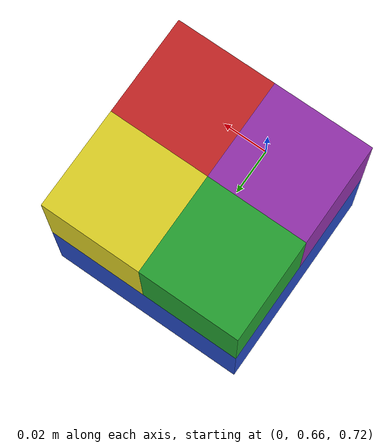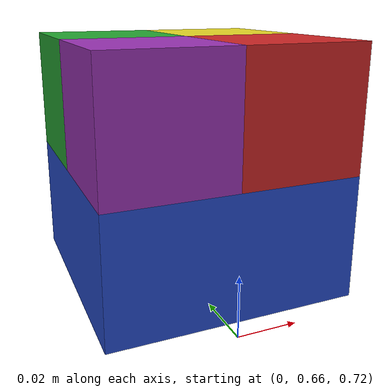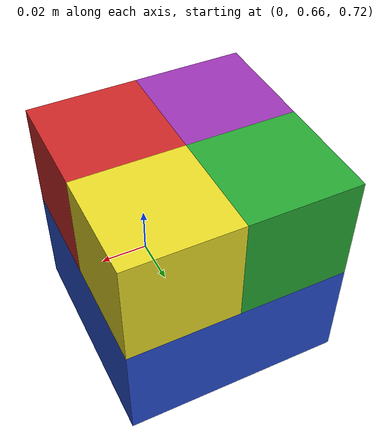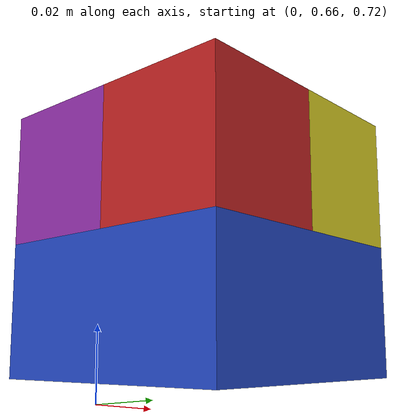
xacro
<?xml version="1.0"?>
<robot xmlns:xacro="http://ros.org/wiki/xacro" name="cube">

  <xacro:macro name="base_block" params="length">
    <link name="cube_link">
      <visual>
        <geometry>
          <box size="${length} ${length} ${length/2}"/>
          <material name="">
            <color rgba="0.9 0.9 0.9 1" />
          </material>
        </geometry>
      </visual>
      <collision>
        <geometry>
          <box size="${length} ${length} ${length/2}"/>
        </geometry>
      </collision>
      <inertial>
        <origin xyz="0 0 0" rpy="0 0 0"/>
        <mass value="0.1"/>
        <inertia
          ixx="1.0" ixy="0.0" ixz="0.0"
          iyy="1.0" iyz="0.0"
          izz="1.0"/>
      </inertial>
    </link>
  </xacro:macro>

  <xacro:macro name="top_cube" params="length suffix">
    <link name="cube_${suffix}">
      <visual>
        <geometry>
          <box size="${length/2} ${length/2} ${length/2}"/>
          <material name="">
            <color rgba="0.9 0.9 0.9 1" />
          </material>
        </geometry>
      </visual>
      <collision>
        <geometry>
          <box size="${length/2} ${length/2} ${length/2}"/>
        </geometry>
      </collision>
      <inertial>
        <origin xyz="0 0 0" rpy="0 0 0"/>
        <mass value="0.1"/>
        <inertia
          ixx="1.0" ixy="0.0" ixz="0.0"
          iyy="1.0" iyz="0.0"
          izz="1.0"/>
      </inertial>
    </link>
  </xacro:macro>

  <xacro:macro name="colour_cube" params="length">
    <xacro:base_block length="${length}" />
    <xacro:top_cube length="${length}" suffix="1"/>
    <xacro:top_cube length="${length}" suffix="2"/>
    <xacro:top_cube length="${length}" suffix="3"/>
    <xacro:top_cube length="${length}" suffix="4"/>
    <link name="world" />

    <joint name="world2cube_joint" type="fixed">
      <parent link="world" />
      <child link = "cube_link" />
      <origin xyz="0.0 0.7 ${0.7125+0.0127+length/4}" rpy="3.1415926 0.0 3.1415926" />
    </joint>

    <joint name="cube_1_2_base" type="fixed">
      <parent link="cube_link" />
      <child link = "cube_1" />
      <origin xyz="${-length/4} ${-length/4} ${-length/2}" rpy="0 0 0" />
    </joint>

    <joint name="cube_2_2_base" type="fixed">
      <parent link="cube_link" />
      <child link = "cube_2" />
      <origin xyz="${length/4} ${-length/4} ${-length/2}" rpy="0 0 0" />
    </joint>

    <joint name="cube_3_2_base" type="fixed">
      <parent link="cube_link" />
      <child link = "cube_3" />
      <origin xyz="${-length/4} ${length/4} ${-length/2}" rpy="0 0 0" />
    </joint>

    <joint name="cube_4_2_base" type="fixed">
      <parent link="cube_link" />
      <child link = "cube_4" />
      <origin xyz="${length/4} ${length/4} ${-length/2}" rpy="0 0 0" />
    </joint>

  </xacro:macro>

  <xacro:colour_cube length="0.08" />

  <gazebo reference="cube_link">
    <material>Gazebo/Blue</material>
    <kinematic>1</kinematic>
    <selfCollide>1</selfCollide>
  </gazebo>

  <gazebo reference="cube_1">
    <material>Gazebo/Red</material>
    <kinematic>1</kinematic>
    <selfCollide>1</selfCollide>
  </gazebo>

  <gazebo reference="cube_2">
    <material>Gazebo/Purple</material>
    <kinematic>1</kinematic>
    <selfCollide>1</selfCollide>
  </gazebo>

  <gazebo reference="cube_3">
    <material>Gazebo/Yellow</material>
    <kinematic>1</kinematic>
    <selfCollide>1</selfCollide>
  </gazebo>

  <gazebo reference="cube_4">
    <material>Gazebo/Green</material>
    <kinematic>1</kinematic>
    <selfCollide>1</selfCollide>
  </gazebo>

</robot>
